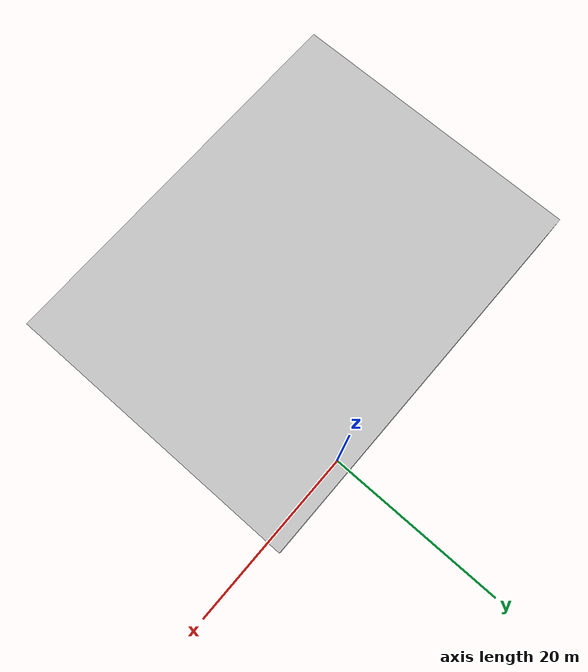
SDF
<?xml version="1.0"?>
<sdf version="1.6">
    <model name="satsop_floor02_tile12">
        <static>true</static>
        <link name="base_link">
            <collision name="collision">
                <pose>0 0 0 0 0 0</pose>
                <geometry>
                    <mesh>
                        <uri>meshes/12.dae</uri>
                        <scale>1.0 1.0 1.0</scale>
                    </mesh>
                </geometry>
            </collision>
            <visual name="visual">
                <geometry>
                    <mesh>
                        <uri>meshes/12.dae</uri>
                    </mesh>
                </geometry>
            </visual>
        </link>
    </model>
</sdf>
